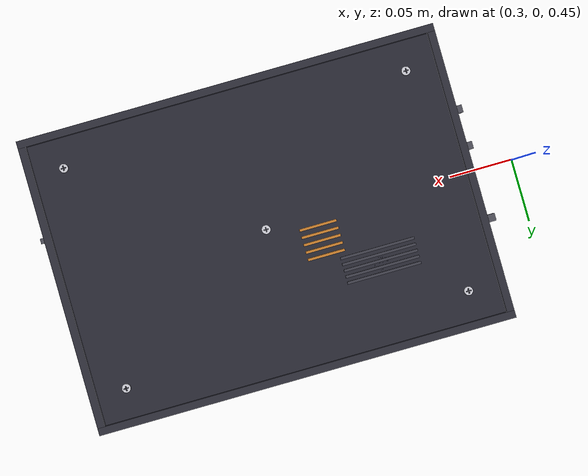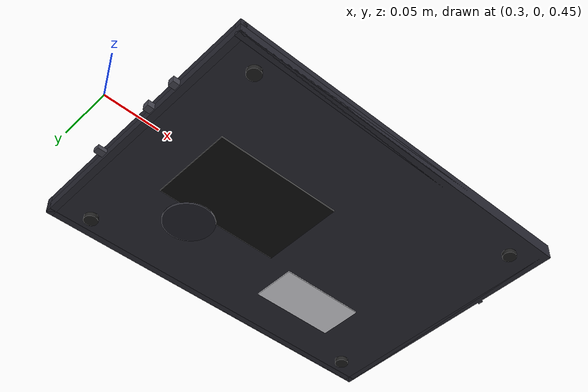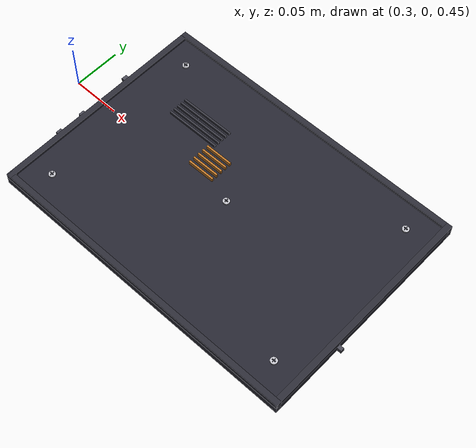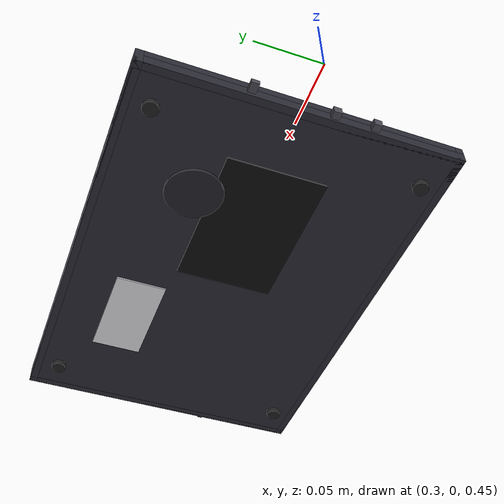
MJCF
<!-- Laptop device — visually detailed for demo/video renders
     Recognizable laptop shape from overhead. Components physically separate. -->
<mujoco model="laptop_device">
  <compiler angle="radian"/>
  <option timestep="0.002"/>

  <default>
    <default class="device_body">
      <geom friction="0.8 0.005 0.001"/>
    </default>
    <default class="screw">
      <geom friction="0.3 0.001 0.0001"/>
      <joint damping="0.5"/>
    </default>
    <default class="connector">
      <geom friction="1.5 0.01 0.001"/>
    </default>
  </default>

  <asset>
    <texture name="pcb_tex" type="2d" builtin="checker" rgb1="0.02 0.30 0.05" rgb2="0.01 0.22 0.03" width="128" height="128"/>
    <material name="shell_dark" rgba="0.16 0.16 0.20 1" specular="0.7" shininess="0.85" reflectance="0.12"/>
    <material name="shell_inner" rgba="0.22 0.22 0.26 1" specular="0.3"/>
    <material name="panel_mat" rgba="0.14 0.14 0.18 1" specular="0.6" shininess="0.8" reflectance="0.1"/>
    <material name="pcb_mat" texture="pcb_tex" texrepeat="4 3" specular="0.15"/>
    <material name="batt_mat" rgba="0.06 0.06 0.06 1" specular="0.04"/>
    <material name="batt_label" rgba="0.12 0.12 0.38 1" specular="0.1"/>
    <material name="ram_mat" rgba="0.04 0.42 0.10 1" specular="0.3" shininess="0.4"/>
    <material name="ram_chip" rgba="0.08 0.08 0.10 1" specular="0.5" shininess="0.6"/>
    <material name="ssd_mat" rgba="0.10 0.10 0.16 1" specular="0.4" shininess="0.5"/>
    <material name="screw_mat" rgba="0.75 0.75 0.78 1" specular="0.9" shininess="0.95" reflectance="0.3"/>
    <material name="fan_mat" rgba="0.13 0.13 0.16 1" specular="0.25"/>
    <material name="blade_mat" rgba="0.18 0.18 0.22 1" specular="0.2"/>
    <material name="hs_mat" rgba="0.72 0.45 0.15 1" specular="0.6" shininess="0.7" reflectance="0.2"/>
    <material name="pipe_mat" rgba="0.75 0.50 0.20 1" specular="0.7" shininess="0.8" reflectance="0.25"/>
    <material name="conn_wh" rgba="0.92 0.90 0.85 1" specular="0.3"/>
    <material name="conn_bk" rgba="0.04 0.04 0.04 1" specular="0.2"/>
    <material name="rubber_ft" rgba="0.12 0.12 0.12 1" specular="0.04"/>
    <material name="port_mat" rgba="0.28 0.28 0.32 1" specular="0.4"/>
    <material name="gold_pin" rgba="0.85 0.70 0.15 1" specular="0.7" shininess="0.8"/>
    <material name="label_wh" rgba="0.88 0.88 0.90 1" specular="0.1"/>
    <material name="warn_yel" rgba="0.95 0.85 0.10 1" specular="0.2"/>
    <material name="trace_mat" rgba="0.60 0.52 0.12 1" specular="0.3"/>
  </asset>

  <worldbody>
    <body name="laptop_base" pos="0.5 0 0.44">

      <!-- ══ CHASSIS ══ -->
      <geom name="chassis_bottom" type="box" size="0.17 0.12 0.004" material="shell_dark" mass="0.5"/>
      <!-- raised rim -->
      <geom name="rim_f" type="box" size="0.17 0.003 0.007" pos="0 -0.117 0.003" material="shell_dark" mass="0.02"/>
      <geom name="rim_b" type="box" size="0.17 0.003 0.007" pos="0 0.117 0.003" material="shell_dark" mass="0.02"/>
      <geom name="rim_l" type="box" size="0.003 0.12 0.007" pos="-0.167 0 0.003" material="shell_dark" mass="0.02"/>
      <geom name="rim_r" type="box" size="0.003 0.12 0.007" pos="0.167 0 0.003" material="shell_dark" mass="0.02"/>
      <!-- rubber feet -->
      <geom name="foot_fl" type="cylinder" size="0.006 0.002" pos="-0.14 -0.10 -0.006" material="rubber_ft" mass="0.005"/>
      <geom name="foot_fr" type="cylinder" size="0.006 0.002" pos="0.14 -0.10 -0.006" material="rubber_ft" mass="0.005"/>
      <geom name="foot_bl" type="cylinder" size="0.006 0.002" pos="-0.14 0.10 -0.006" material="rubber_ft" mass="0.005"/>
      <geom name="foot_br" type="cylinder" size="0.006 0.002" pos="0.14 0.10 -0.006" material="rubber_ft" mass="0.005"/>
      <!-- side ports -->
      <geom name="usb1" type="box" size="0.006 0.003 0.003" pos="-0.170 -0.05 0.001" material="port_mat" mass="0.001" contype="0" conaffinity="0"/>
      <geom name="usb2" type="box" size="0.006 0.003 0.003" pos="-0.170 -0.02 0.001" material="port_mat" mass="0.001" contype="0" conaffinity="0"/>
      <geom name="hdmi" type="box" size="0.008 0.003 0.002" pos="-0.170 0.04 0.001" material="port_mat" mass="0.001" contype="0" conaffinity="0"/>
      <geom name="usbc" type="box" size="0.005 0.002 0.002" pos="0.170 -0.04 0.001" material="port_mat" mass="0.001" contype="0" conaffinity="0"/>
      <!-- product label -->
      <geom name="prod_label" type="box" size="0.04 0.02 0.0005" pos="0.06 0.06 -0.005" material="label_wh" mass="0.001" contype="0" conaffinity="0"/>

      <!-- ══ BACK PANEL (slides up when screws removed) ══ -->
      <body name="back_panel" pos="0 0 0.005">
        <joint name="panel_slide_z" type="slide" axis="0 0 1" range="0 0.25" stiffness="500" damping="50"/>
        <geom name="back_panel_geom" type="box" size="0.165 0.115 0.002" material="panel_mat" mass="0.12"/>
        <!-- ventilation grille -->
        <geom name="vent1" type="box" size="0.03 0.001 0.0025" pos="-0.08 0.058 0.002" material="shell_inner" mass="0.001" contype="0" conaffinity="0"/>
        <geom name="vent2" type="box" size="0.03 0.001 0.0025" pos="-0.08 0.053 0.002" material="shell_inner" mass="0.001" contype="0" conaffinity="0"/>
        <geom name="vent3" type="box" size="0.03 0.001 0.0025" pos="-0.08 0.048 0.002" material="shell_inner" mass="0.001" contype="0" conaffinity="0"/>
        <geom name="vent4" type="box" size="0.03 0.001 0.0025" pos="-0.08 0.043 0.002" material="shell_inner" mass="0.001" contype="0" conaffinity="0"/>
        <geom name="vent5" type="box" size="0.03 0.001 0.0025" pos="-0.08 0.038 0.002" material="shell_inner" mass="0.001" contype="0" conaffinity="0"/>

        <!-- SCREWS (5× phillips) — each can unscrew (rotate) then lift out (slide) -->
        <body name="screw_1" pos="-0.14 -0.09 0.002" childclass="screw">
          <joint name="screw_1_turn" type="hinge" axis="0 0 1" range="0 31.4159" stiffness="2.0" damping="0.3"/>
          <joint name="screw_1_slide" type="slide" axis="0 0 1" range="0 0.06" stiffness="100" damping="5"/>
          <geom name="screw_1_head" type="cylinder" size="0.0035 0.0015" material="screw_mat" mass="0.002"/>
          <geom name="s1xa" type="box" size="0.002 0.0004 0.0005" pos="0 0 0.002" material="shell_inner" mass="0.0001" contype="0" conaffinity="0"/>
          <geom name="s1xb" type="box" size="0.0004 0.002 0.0005" pos="0 0 0.002" material="shell_inner" mass="0.0001" contype="0" conaffinity="0"/>
          <geom name="screw_1_shaft" type="cylinder" size="0.0012 0.005" pos="0 0 -0.004" material="screw_mat" mass="0.001"/>
          <site name="screw_1_site" pos="0 0 0.003" type="sphere" size="0.004" rgba="0 0 0 0"/>
        </body>
        <body name="screw_2" pos="0.14 -0.09 0.002" childclass="screw">
          <joint name="screw_2_turn" type="hinge" axis="0 0 1" range="0 31.4159" stiffness="2.0" damping="0.3"/>
          <joint name="screw_2_slide" type="slide" axis="0 0 1" range="0 0.06" stiffness="100" damping="5"/>
          <geom name="screw_2_head" type="cylinder" size="0.0035 0.0015" material="screw_mat" mass="0.002"/>
          <geom name="s2xa" type="box" size="0.002 0.0004 0.0005" pos="0 0 0.002" material="shell_inner" mass="0.0001" contype="0" conaffinity="0"/>
          <geom name="s2xb" type="box" size="0.0004 0.002 0.0005" pos="0 0 0.002" material="shell_inner" mass="0.0001" contype="0" conaffinity="0"/>
          <geom name="screw_2_shaft" type="cylinder" size="0.0012 0.005" pos="0 0 -0.004" material="screw_mat" mass="0.001"/>
          <site name="screw_2_site" pos="0 0 0.003" type="sphere" size="0.004" rgba="0 0 0 0"/>
        </body>
        <body name="screw_3" pos="-0.14 0.09 0.002" childclass="screw">
          <joint name="screw_3_turn" type="hinge" axis="0 0 1" range="0 31.4159" stiffness="2.0" damping="0.3"/>
          <joint name="screw_3_slide" type="slide" axis="0 0 1" range="0 0.06" stiffness="100" damping="5"/>
          <geom name="screw_3_head" type="cylinder" size="0.0035 0.0015" material="screw_mat" mass="0.002"/>
          <geom name="s3xa" type="box" size="0.002 0.0004 0.0005" pos="0 0 0.002" material="shell_inner" mass="0.0001" contype="0" conaffinity="0"/>
          <geom name="s3xb" type="box" size="0.0004 0.002 0.0005" pos="0 0 0.002" material="shell_inner" mass="0.0001" contype="0" conaffinity="0"/>
          <geom name="screw_3_shaft" type="cylinder" size="0.0012 0.005" pos="0 0 -0.004" material="screw_mat" mass="0.001"/>
          <site name="screw_3_site" pos="0 0 0.003" type="sphere" size="0.004" rgba="0 0 0 0"/>
        </body>
        <body name="screw_4" pos="0.14 0.09 0.002" childclass="screw">
          <joint name="screw_4_turn" type="hinge" axis="0 0 1" range="0 31.4159" stiffness="2.0" damping="0.3"/>
          <joint name="screw_4_slide" type="slide" axis="0 0 1" range="0 0.06" stiffness="100" damping="5"/>
          <geom name="screw_4_head" type="cylinder" size="0.0035 0.0015" material="screw_mat" mass="0.002"/>
          <geom name="s4xa" type="box" size="0.002 0.0004 0.0005" pos="0 0 0.002" material="shell_inner" mass="0.0001" contype="0" conaffinity="0"/>
          <geom name="s4xb" type="box" size="0.0004 0.002 0.0005" pos="0 0 0.002" material="shell_inner" mass="0.0001" contype="0" conaffinity="0"/>
          <geom name="screw_4_shaft" type="cylinder" size="0.0012 0.005" pos="0 0 -0.004" material="screw_mat" mass="0.001"/>
          <site name="screw_4_site" pos="0 0 0.003" type="sphere" size="0.004" rgba="0 0 0 0"/>
        </body>
        <body name="screw_5" pos="0 0 0.002" childclass="screw">
          <joint name="screw_5_turn" type="hinge" axis="0 0 1" range="0 31.4159" stiffness="2.0" damping="0.3"/>
          <joint name="screw_5_slide" type="slide" axis="0 0 1" range="0 0.06" stiffness="100" damping="5"/>
          <geom name="screw_5_head" type="cylinder" size="0.0035 0.0015" material="screw_mat" mass="0.002"/>
          <geom name="s5xa" type="box" size="0.002 0.0004 0.0005" pos="0 0 0.002" material="shell_inner" mass="0.0001" contype="0" conaffinity="0"/>
          <geom name="s5xb" type="box" size="0.0004 0.002 0.0005" pos="0 0 0.002" material="shell_inner" mass="0.0001" contype="0" conaffinity="0"/>
          <geom name="screw_5_shaft" type="cylinder" size="0.0012 0.005" pos="0 0 -0.004" material="screw_mat" mass="0.001"/>
          <site name="screw_5_site" pos="0 0 0.003" type="sphere" size="0.004" rgba="0 0 0 0"/>
        </body>
      </body>

      <!-- ══ MOTHERBOARD (revealed under panel) ══ -->
      <body name="motherboard" pos="0.02 0 -0.003">
        <geom name="pcb_main" type="box" size="0.13 0.09 0.0008" material="pcb_mat" mass="0.12"/>
        <geom name="cpu_die" type="box" size="0.015 0.015 0.002" pos="-0.04 0.02 0.002" rgba="0.11 0.11 0.14 1" mass="0.02" contype="0" conaffinity="0"/>
        <geom name="gpu_die" type="box" size="0.012 0.012 0.0015" pos="-0.04 -0.03 0.002" rgba="0.09 0.09 0.12 1" mass="0.015" contype="0" conaffinity="0"/>
        <geom name="pch" type="box" size="0.008 0.008 0.001" pos="0.04 0.02 0.002" rgba="0.13 0.13 0.16 1" mass="0.008" contype="0" conaffinity="0"/>
        <!-- gold traces -->
        <geom name="tr1" type="box" size="0.0003 0.04 0.0002" pos="0.02 -0.01 0.001" material="trace_mat" mass="0.0001" contype="0" conaffinity="0"/>
        <geom name="tr2" type="box" size="0.04 0.0003 0.0002" pos="-0.01 0.00 0.001" material="trace_mat" mass="0.0001" contype="0" conaffinity="0"/>
        <geom name="tr3" type="box" size="0.0003 0.03 0.0002" pos="0.06 0.02 0.001" material="trace_mat" mass="0.0001" contype="0" conaffinity="0"/>
        <!-- smd rows -->
        <geom name="smd1" type="box" size="0.02 0.001 0.0005" pos="0.06 -0.04 0.001" rgba="0.08 0.08 0.08 1" mass="0.001" contype="0" conaffinity="0"/>
        <geom name="smd2" type="box" size="0.015 0.001 0.0005" pos="0.06 -0.035 0.001" rgba="0.08 0.08 0.08 1" mass="0.001" contype="0" conaffinity="0"/>
        <site name="pcb_center" pos="0 0 0" type="sphere" size="0.003" rgba="0 0 0 0"/>
        <site name="pcb_stress_zone" pos="0 0 0.001" type="box" size="0.13 0.09 0.001" rgba="0 0 0 0"/>
      </body>

      <!-- ══ BATTERY ══ -->
      <body name="battery" pos="-0.06 0 -0.001">
        <joint name="battery_connector" type="slide" axis="1 0 0" range="0 0.15" stiffness="200" damping="20"/>
        <geom name="battery_cell" type="box" size="0.058 0.038 0.004" material="batt_mat" mass="0.25"/>
        <geom name="batt_lbl" type="box" size="0.04 0.025 0.0005" pos="0 0 0.0045" material="batt_label" mass="0.001" contype="0" conaffinity="0"/>
        <geom name="batt_warn" type="box" size="0.005 0.005 0.0005" pos="0.03 0.02 0.0046" material="warn_yel" mass="0.0001" contype="0" conaffinity="0"/>
        <geom name="batt_tab_l" type="box" size="0.003 0.01 0.002" pos="-0.058 0 0" material="batt_mat" mass="0.002"/>
        <geom name="batt_tab_r" type="box" size="0.003 0.01 0.002" pos="0.058 0 0" material="batt_mat" mass="0.002"/>
        <site name="battery_puncture_zone" pos="0 0 0" type="box" size="0.058 0.038 0.004" rgba="0 0 0 0"/>
        <body name="battery_plug" pos="0.06 0 0.002">
          <geom name="batt_ribbon" type="box" size="0.012 0.004 0.001" material="conn_wh" mass="0.005"/>
          <geom name="batt_plug_tip" type="box" size="0.005 0.006 0.002" pos="0.012 0 0" material="conn_bk" mass="0.003"/>
          <site name="battery_connector_site" pos="0.012 0 0.003" type="sphere" size="0.004" rgba="0 0 0 0"/>
        </body>
      </body>

      <!-- ══ RAM MODULE ══ -->
      <body name="ram_module" pos="0.10 0.04 -0.001">
        <joint name="ram_slot" type="slide" axis="0 0 1" range="0 0.08" stiffness="150" damping="10"/>
        <joint name="ram_latch" type="hinge" axis="1 0 0" range="0 0.5" stiffness="3" damping="0.5"/>
        <geom name="ram_pcb" type="box" size="0.033 0.013 0.0005" material="ram_mat" mass="0.008"/>
        <geom name="rc1" type="box" size="0.005 0.004 0.001" pos="-0.022 0.005 0.0015" material="ram_chip" mass="0.001" contype="0" conaffinity="0"/>
        <geom name="rc2" type="box" size="0.005 0.004 0.001" pos="-0.011 0.005 0.0015" material="ram_chip" mass="0.001" contype="0" conaffinity="0"/>
        <geom name="rc3" type="box" size="0.005 0.004 0.001" pos="0.000 0.005 0.0015" material="ram_chip" mass="0.001" contype="0" conaffinity="0"/>
        <geom name="rc4" type="box" size="0.005 0.004 0.001" pos="0.011 0.005 0.0015" material="ram_chip" mass="0.001" contype="0" conaffinity="0"/>
        <geom name="rc5" type="box" size="0.005 0.004 0.001" pos="-0.022 -0.005 0.0015" material="ram_chip" mass="0.001" contype="0" conaffinity="0"/>
        <geom name="rc6" type="box" size="0.005 0.004 0.001" pos="-0.011 -0.005 0.0015" material="ram_chip" mass="0.001" contype="0" conaffinity="0"/>
        <geom name="rc7" type="box" size="0.005 0.004 0.001" pos="0.000 -0.005 0.0015" material="ram_chip" mass="0.001" contype="0" conaffinity="0"/>
        <geom name="rc8" type="box" size="0.005 0.004 0.001" pos="0.011 -0.005 0.0015" material="ram_chip" mass="0.001" contype="0" conaffinity="0"/>
        <geom name="ram_label" type="box" size="0.015 0.005 0.0003" pos="0.012 0 0.002" material="label_wh" mass="0.0001" contype="0" conaffinity="0"/>
        <geom name="ram_pins" type="box" size="0.030 0.001 0.0003" pos="0 -0.013 -0.0005" material="gold_pin" mass="0.001" contype="0" conaffinity="0"/>
        <site name="ram_site" pos="0 0 0.003" type="sphere" size="0.004" rgba="0 0 0 0"/>
      </body>

      <!-- ══ SSD (M.2) ══ -->
      <body name="ssd_module" pos="0.10 -0.04 -0.001">
        <joint name="ssd_slot" type="slide" axis="1 0 0" range="0 0.10" stiffness="100" damping="8"/>
        <geom name="ssd_pcb" type="box" size="0.033 0.011 0.0005" material="ssd_mat" mass="0.01"/>
        <geom name="nand" type="box" size="0.008 0.008 0.001" pos="-0.010 0 0.0015" rgba="0.08 0.08 0.10 1" mass="0.005" contype="0" conaffinity="0"/>
        <geom name="ssd_ctrl" type="box" size="0.005 0.005 0.0008" pos="0.015 0 0.0013" rgba="0.10 0.10 0.13 1" mass="0.003" contype="0" conaffinity="0"/>
        <geom name="ssd_lbl" type="box" size="0.020 0.008 0.0003" pos="0 0 0.002" rgba="0.05 0.20 0.05 1" mass="0.0001" contype="0" conaffinity="0"/>
        <geom name="ssd_edge" type="box" size="0.001 0.010 0.0005" pos="0.034 0 0" material="gold_pin" mass="0.001" contype="0" conaffinity="0"/>
        <site name="ssd_site" pos="0 0 0.003" type="sphere" size="0.004" rgba="0 0 0 0"/>
        <body name="ssd_screw" pos="-0.030 0 0.002" childclass="screw">
          <joint name="ssd_screw_turn" type="hinge" axis="0 0 1" range="0 31.4159" stiffness="1.5" damping="0.2"/>
          <geom name="ssd_screw_head" type="cylinder" size="0.0025 0.001" material="screw_mat" mass="0.001"/>
          <site name="ssd_screw_site" pos="0 0 0.002" type="sphere" size="0.003" rgba="0 0 0 0"/>
        </body>
      </body>

      <!-- ══ FAN ASSEMBLY ══ -->
      <body name="fan_assembly" pos="-0.08 0.05 -0.001">
        <joint name="fan_mount" type="slide" axis="0 0 1" range="0 0.10" stiffness="80" damping="5"/>
        <geom name="fan_base" type="cylinder" size="0.022 0.005" material="fan_mat" mass="0.03"/>
        <geom name="fan_hub" type="cylinder" size="0.006 0.003" pos="0 0 0.005" rgba="0.22 0.22 0.28 1" mass="0.005" contype="0" conaffinity="0"/>
        <geom name="bl1" type="box" size="0.015 0.003 0.001" pos="0 0 0.006" material="blade_mat" mass="0.001" contype="0" conaffinity="0"/>
        <geom name="bl2" type="box" size="0.003 0.015 0.001" pos="0 0 0.006" material="blade_mat" mass="0.001" contype="0" conaffinity="0"/>
        <geom name="bl3" type="box" size="0.012 0.012 0.001" pos="0 0 0.006" euler="0 0 0.785" material="blade_mat" mass="0.001" contype="0" conaffinity="0"/>
        <geom name="fan_conn" type="box" size="0.004 0.002 0.002" pos="0.022 0.01 0.003" material="conn_wh" mass="0.001"/>
        <site name="fan_site" pos="0 0 0.007" type="sphere" size="0.004" rgba="0 0 0 0"/>
      </body>

      <!-- ══ HEATSINK + HEATPIPE ══ -->
      <body name="heatsink" pos="-0.04 0.02 -0.001">
        <geom name="hs_base" type="box" size="0.018 0.018 0.002" material="hs_mat" mass="0.04"/>
        <geom name="hpipe" type="capsule" fromto="0 0 0.003 -0.04 0.03 0.003" size="0.003" material="pipe_mat" mass="0.01" contype="0" conaffinity="0"/>
        <geom name="fin1" type="box" size="0.015 0.001 0.006" pos="0 -0.012 0.006" material="hs_mat" mass="0.003" contype="0" conaffinity="0"/>
        <geom name="fin2" type="box" size="0.015 0.001 0.006" pos="0 -0.006 0.006" material="hs_mat" mass="0.003" contype="0" conaffinity="0"/>
        <geom name="fin3" type="box" size="0.015 0.001 0.006" pos="0 0.000 0.006" material="hs_mat" mass="0.003" contype="0" conaffinity="0"/>
        <geom name="fin4" type="box" size="0.015 0.001 0.006" pos="0 0.006 0.006" material="hs_mat" mass="0.003" contype="0" conaffinity="0"/>
        <geom name="fin5" type="box" size="0.015 0.001 0.006" pos="0 0.012 0.006" material="hs_mat" mass="0.003" contype="0" conaffinity="0"/>
      </body>

    </body>
  </worldbody>
</mujoco>
